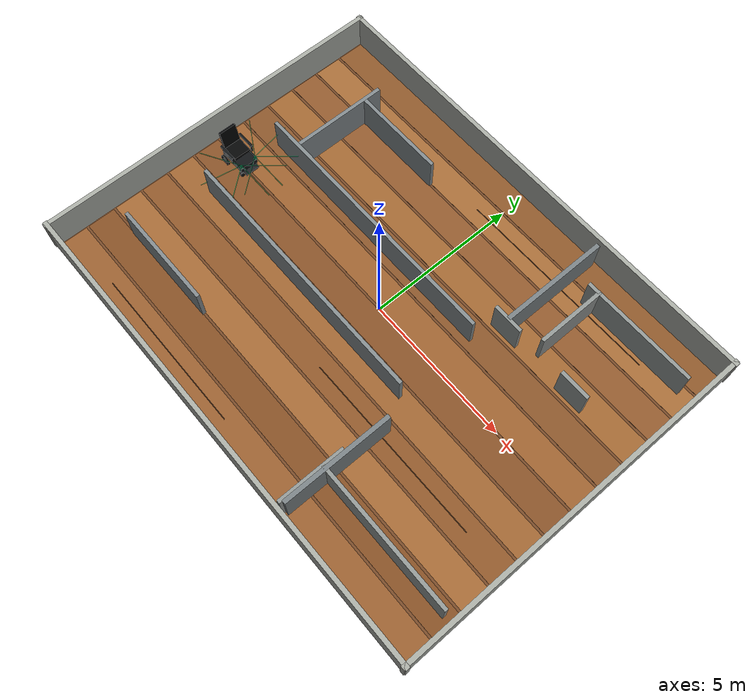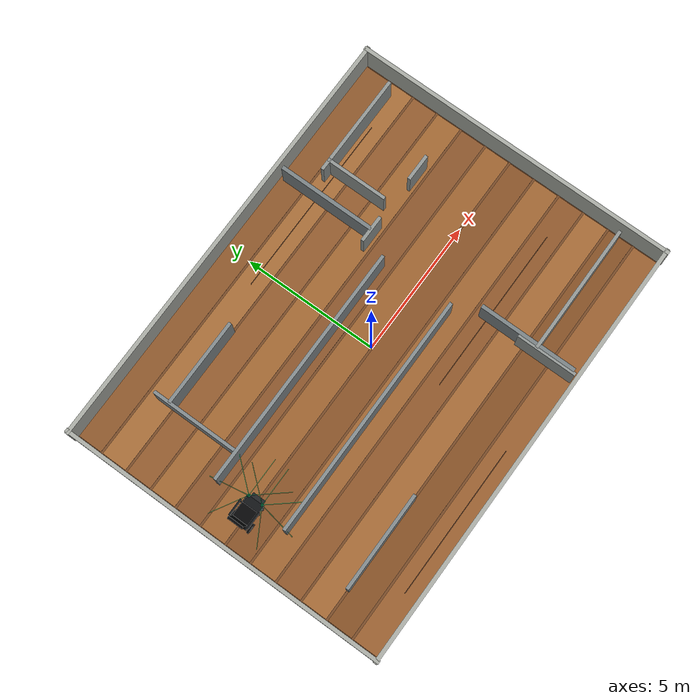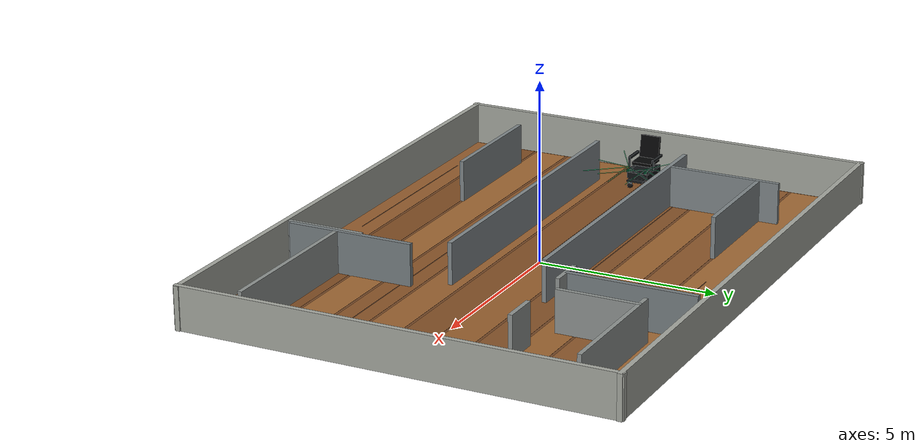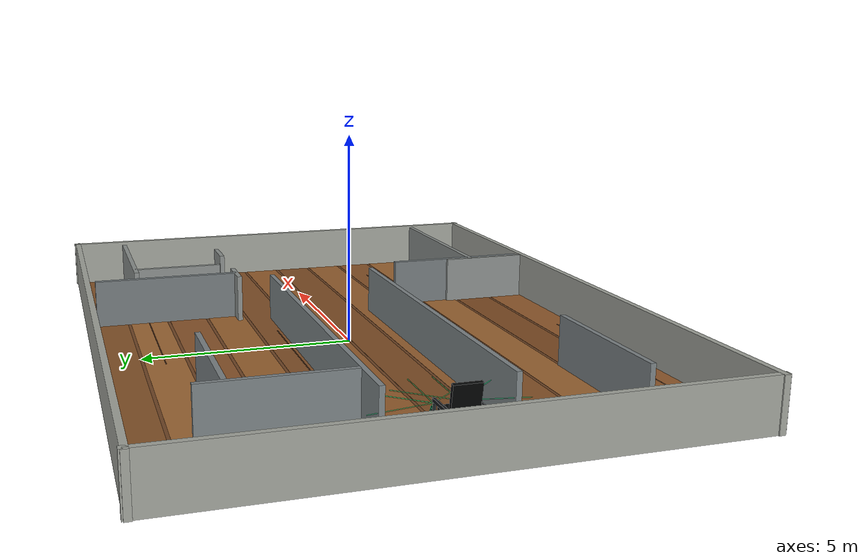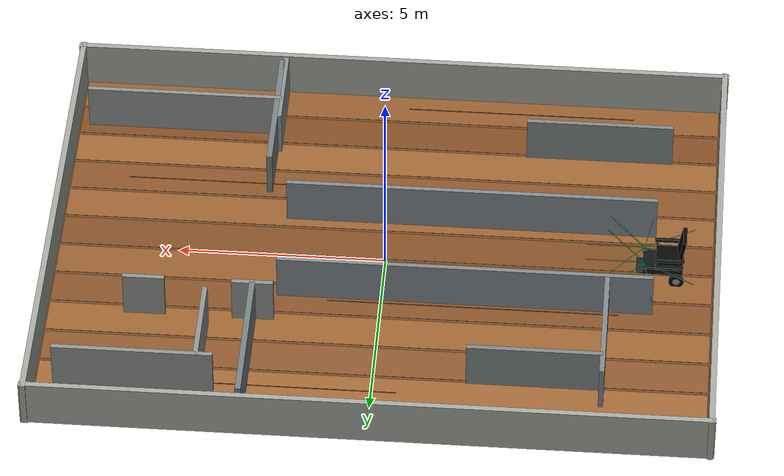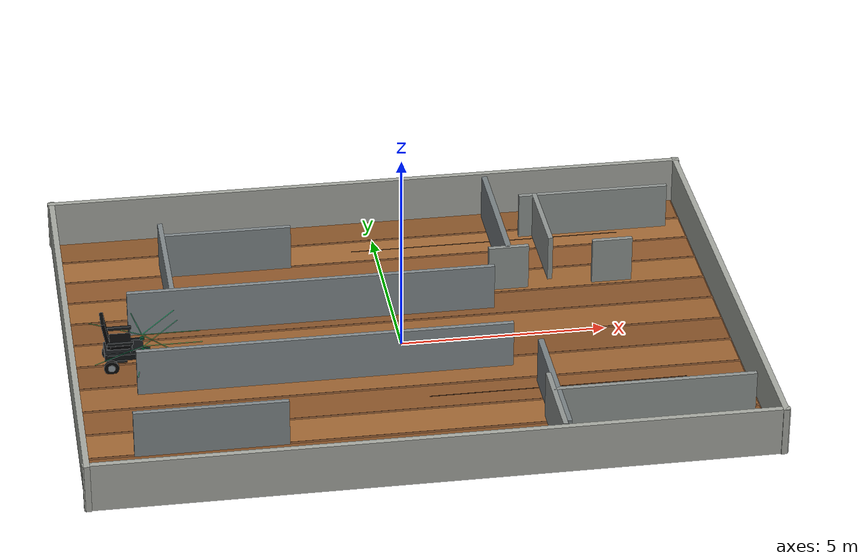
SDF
<?xml version="1.0"?>
<sdf version="1.10">
  <world name="m6_room">
    <physics name="1ms" type="ignored">
      <max_step_size>0.001</max_step_size>
      <real_time_factor>1.0</real_time_factor>
    </physics>

    <plugin filename="gz-sim-physics-system" name="gz::sim::systems::Physics"/>
    <plugin filename="gz-sim-user-commands-system" name="gz::sim::systems::UserCommands"/>
    <plugin filename="gz-sim-scene-broadcaster-system" name="gz::sim::systems::SceneBroadcaster"/>
    <plugin filename="gz-sim-sensors-system" name="gz::sim::systems::Sensors">
      <render_engine>ogre2</render_engine>
    </plugin>

    <light name="sun" type="directional">
      <pose>0 0 8 0 0 0</pose>
      <diffuse>0.90 0.86 0.78 1</diffuse>
      <specular>0.20 0.18 0.15 1</specular>
      <direction>-0.45 0.20 -0.88</direction>
    </light>

    <model name="floor">
      <static>true</static>
      <link name="link">
        <collision name="collision">
          <geometry><box><size>16 12 0.05</size></box></geometry>
        </collision>
        <visual name="visual">
          <geometry><box><size>16 12 0.05</size></box></geometry>
          <material>
            <ambient>0.45 0.28 0.15 1</ambient>
            <diffuse>0.45 0.28 0.15 1</diffuse>
            <specular>0.10 0.08 0.05 1</specular>
          </material>
        </visual>
      </link>
    </model>

    <model name="wood_floor_plank_0"><static>true</static><pose>0 -5.5 0.031 0 0 0</pose><link name="link"><visual name="visual"><geometry><box><size>15.8 0.92 0.004</size></box></geometry><material><ambient>0.58 0.36 0.18 1</ambient><diffuse>0.58 0.36 0.18 1</diffuse></material></visual></link></model>
    <model name="wood_floor_plank_1"><static>true</static><pose>0 -4.5 0.031 0 0 0</pose><link name="link"><visual name="visual"><geometry><box><size>15.8 0.92 0.004</size></box></geometry><material><ambient>0.50 0.30 0.14 1</ambient><diffuse>0.50 0.30 0.14 1</diffuse></material></visual></link></model>
    <model name="wood_floor_plank_2"><static>true</static><pose>0 -3.5 0.031 0 0 0</pose><link name="link"><visual name="visual"><geometry><box><size>15.8 0.92 0.004</size></box></geometry><material><ambient>0.62 0.40 0.20 1</ambient><diffuse>0.62 0.40 0.20 1</diffuse></material></visual></link></model>
    <model name="wood_floor_plank_3"><static>true</static><pose>0 -2.5 0.031 0 0 0</pose><link name="link"><visual name="visual"><geometry><box><size>15.8 0.92 0.004</size></box></geometry><material><ambient>0.54 0.33 0.16 1</ambient><diffuse>0.54 0.33 0.16 1</diffuse></material></visual></link></model>
    <model name="wood_floor_plank_4"><static>true</static><pose>0 -1.5 0.031 0 0 0</pose><link name="link"><visual name="visual"><geometry><box><size>15.8 0.92 0.004</size></box></geometry><material><ambient>0.60 0.38 0.19 1</ambient><diffuse>0.60 0.38 0.19 1</diffuse></material></visual></link></model>
    <model name="wood_floor_plank_5"><static>true</static><pose>0 -0.5 0.031 0 0 0</pose><link name="link"><visual name="visual"><geometry><box><size>15.8 0.92 0.004</size></box></geometry><material><ambient>0.51 0.31 0.15 1</ambient><diffuse>0.51 0.31 0.15 1</diffuse></material></visual></link></model>
    <model name="wood_floor_plank_6"><static>true</static><pose>0 0.5 0.031 0 0 0</pose><link name="link"><visual name="visual"><geometry><box><size>15.8 0.92 0.004</size></box></geometry><material><ambient>0.59 0.37 0.18 1</ambient><diffuse>0.59 0.37 0.18 1</diffuse></material></visual></link></model>
    <model name="wood_floor_plank_7"><static>true</static><pose>0 1.5 0.031 0 0 0</pose><link name="link"><visual name="visual"><geometry><box><size>15.8 0.92 0.004</size></box></geometry><material><ambient>0.52 0.32 0.16 1</ambient><diffuse>0.52 0.32 0.16 1</diffuse></material></visual></link></model>
    <model name="wood_floor_plank_8"><static>true</static><pose>0 2.5 0.031 0 0 0</pose><link name="link"><visual name="visual"><geometry><box><size>15.8 0.92 0.004</size></box></geometry><material><ambient>0.61 0.39 0.19 1</ambient><diffuse>0.61 0.39 0.19 1</diffuse></material></visual></link></model>
    <model name="wood_floor_plank_9"><static>true</static><pose>0 3.5 0.031 0 0 0</pose><link name="link"><visual name="visual"><geometry><box><size>15.8 0.92 0.004</size></box></geometry><material><ambient>0.55 0.34 0.17 1</ambient><diffuse>0.55 0.34 0.17 1</diffuse></material></visual></link></model>
    <model name="wood_floor_plank_10"><static>true</static><pose>0 4.5 0.031 0 0 0</pose><link name="link"><visual name="visual"><geometry><box><size>15.8 0.92 0.004</size></box></geometry><material><ambient>0.63 0.41 0.21 1</ambient><diffuse>0.63 0.41 0.21 1</diffuse></material></visual></link></model>
    <model name="wood_floor_plank_11"><static>true</static><pose>0 5.5 0.031 0 0 0</pose><link name="link"><visual name="visual"><geometry><box><size>15.8 0.92 0.004</size></box></geometry><material><ambient>0.53 0.33 0.16 1</ambient><diffuse>0.53 0.33 0.16 1</diffuse></material></visual></link></model>
    <model name="wood_floor_grain_0"><static>true</static><pose>-3.0 -5.5 0.034 0 0 0</pose><link name="link"><visual name="visual"><geometry><box><size>5.6 0.025 0.005</size></box></geometry><material><ambient>0.28 0.16 0.08 1</ambient><diffuse>0.28 0.16 0.08 1</diffuse></material></visual></link></model>
    <model name="wood_floor_grain_1"><static>true</static><pose>3.4 -2.5 0.034 0 0 0</pose><link name="link"><visual name="visual"><geometry><box><size>6.2 0.025 0.005</size></box></geometry><material><ambient>0.30 0.17 0.08 1</ambient><diffuse>0.30 0.17 0.08 1</diffuse></material></visual></link></model>
    <model name="wood_floor_grain_2"><static>true</static><pose>-2.2 1.5 0.034 0 0 0</pose><link name="link"><visual name="visual"><geometry><box><size>7.0 0.025 0.005</size></box></geometry><material><ambient>0.29 0.17 0.08 1</ambient><diffuse>0.29 0.17 0.08 1</diffuse></material></visual></link></model>
    <model name="wood_floor_grain_3"><static>true</static><pose>2.8 4.5 0.034 0 0 0</pose><link name="link"><visual name="visual"><geometry><box><size>6.8 0.025 0.005</size></box></geometry><material><ambient>0.27 0.15 0.07 1</ambient><diffuse>0.27 0.15 0.07 1</diffuse></material></visual></link></model>

    <model name="outer_north_wall"><static>true</static><pose>0 6 0.60 0 0 0</pose><link name="link"><collision name="collision"><geometry><box><size>16.2 0.14 1.2</size></box></geometry></collision><visual name="visual"><geometry><box><size>16.2 0.14 1.2</size></box></geometry><material><ambient>0.64 0.65 0.62 1</ambient><diffuse>0.64 0.65 0.62 1</diffuse></material></visual></link></model>
    <model name="outer_south_wall"><static>true</static><pose>0 -6 0.60 0 0 0</pose><link name="link"><collision name="collision"><geometry><box><size>16.2 0.14 1.2</size></box></geometry></collision><visual name="visual"><geometry><box><size>16.2 0.14 1.2</size></box></geometry><material><ambient>0.64 0.65 0.62 1</ambient><diffuse>0.64 0.65 0.62 1</diffuse></material></visual></link></model>
    <model name="outer_west_wall"><static>true</static><pose>-8 0 0.60 0 0 0</pose><link name="link"><collision name="collision"><geometry><box><size>0.14 12.2 1.2</size></box></geometry></collision><visual name="visual"><geometry><box><size>0.14 12.2 1.2</size></box></geometry><material><ambient>0.64 0.65 0.62 1</ambient><diffuse>0.64 0.65 0.62 1</diffuse></material></visual></link></model>
    <model name="outer_east_wall"><static>true</static><pose>8 0 0.60 0 0 0</pose><link name="link"><collision name="collision"><geometry><box><size>0.14 12.2 1.2</size></box></geometry></collision><visual name="visual"><geometry><box><size>0.14 12.2 1.2</size></box></geometry><material><ambient>0.64 0.65 0.62 1</ambient><diffuse>0.64 0.65 0.62 1</diffuse></material></visual></link></model>

    <model name="long_corridor_north_wall"><static>true</static><pose>-2.0 1.35 0.60 0 0 0</pose><link name="link"><collision name="collision"><geometry><box><size>9.0 0.12 1.2</size></box></geometry></collision><visual name="visual"><geometry><box><size>9.0 0.12 1.2</size></box></geometry><material><ambient>0.50 0.53 0.54 1</ambient><diffuse>0.50 0.53 0.54 1</diffuse></material></visual></link></model>
    <model name="long_corridor_south_wall"><static>true</static><pose>-2.0 -1.35 0.60 0 0 0</pose><link name="link"><collision name="collision"><geometry><box><size>9.0 0.12 1.2</size></box></geometry></collision><visual name="visual"><geometry><box><size>9.0 0.12 1.2</size></box></geometry><material><ambient>0.50 0.53 0.54 1</ambient><diffuse>0.50 0.53 0.54 1</diffuse></material></visual></link></model>

    <model name="narrow_door_left_jamb"><static>true</static><pose>3.0 4.0 0.60 0 0 0</pose><link name="link"><collision name="collision"><geometry><box><size>0.14 3.6 1.2</size></box></geometry></collision><visual name="visual"><geometry><box><size>0.14 3.6 1.2</size></box></geometry><material><ambient>0.46 0.49 0.50 1</ambient><diffuse>0.46 0.49 0.50 1</diffuse></material></visual></link></model>
    <model name="narrow_door_right_jamb"><static>true</static><pose>3.0 -4.0 0.60 0 0 0</pose><link name="link"><collision name="collision"><geometry><box><size>0.14 3.6 1.2</size></box></geometry></collision><visual name="visual"><geometry><box><size>0.14 3.6 1.2</size></box></geometry><material><ambient>0.46 0.49 0.50 1</ambient><diffuse>0.46 0.49 0.50 1</diffuse></material></visual></link></model>

    <model name="small_room_back_wall"><static>true</static><pose>5.6 4.7 0.60 0 0 0</pose><link name="link"><collision name="collision"><geometry><box><size>3.8 0.12 1.2</size></box></geometry></collision><visual name="visual"><geometry><box><size>3.8 0.12 1.2</size></box></geometry><material><ambient>0.55 0.57 0.56 1</ambient><diffuse>0.55 0.57 0.56 1</diffuse></material></visual></link></model>
    <model name="small_room_side_wall"><static>true</static><pose>4.1 3.6 0.60 0 0 0</pose><link name="link"><collision name="collision"><geometry><box><size>0.12 2.3 1.2</size></box></geometry></collision><visual name="visual"><geometry><box><size>0.12 2.3 1.2</size></box></geometry><material><ambient>0.55 0.57 0.56 1</ambient><diffuse>0.55 0.57 0.56 1</diffuse></material></visual></link></model>
    <model name="small_room_entry_right_wall"><static>true</static><pose>3.0 2.2 0.60 0 0 0</pose><link name="link"><collision name="collision"><geometry><box><size>1.0 0.12 1.2</size></box></geometry></collision><visual name="visual"><geometry><box><size>1.0 0.12 1.2</size></box></geometry><material><ambient>0.55 0.57 0.56 1</ambient><diffuse>0.55 0.57 0.56 1</diffuse></material></visual></link></model>
    <model name="small_room_entry_left_wall"><static>true</static><pose>5.6 2.2 0.60 0 0 0</pose><link name="link"><collision name="collision"><geometry><box><size>1.0 0.12 1.2</size></box></geometry></collision><visual name="visual"><geometry><box><size>1.0 0.12 1.2</size></box></geometry><material><ambient>0.55 0.57 0.56 1</ambient><diffuse>0.55 0.57 0.56 1</diffuse></material></visual></link></model>

    <model name="large_room_back_wall"><static>true</static><pose>5.3 -4.4 0.60 0 0 0</pose><link name="link"><collision name="collision"><geometry><box><size>4.8 0.12 1.2</size></box></geometry></collision><visual name="visual"><geometry><box><size>4.8 0.12 1.2</size></box></geometry><material><ambient>0.55 0.57 0.56 1</ambient><diffuse>0.55 0.57 0.56 1</diffuse></material></visual></link></model>
    <model name="large_room_side_wall"><static>true</static><pose>2.9 -4.8 0.60 0 0 0</pose><link name="link"><collision name="collision"><geometry><box><size>0.12 2.2 1.2</size></box></geometry></collision><visual name="visual"><geometry><box><size>0.12 2.2 1.2</size></box></geometry><material><ambient>0.55 0.57 0.56 1</ambient><diffuse>0.55 0.57 0.56 1</diffuse></material></visual></link></model>

    <model name="maze_turn_wall_a"><static>true</static><pose>-5.4 3.0 0.60 0 0 0</pose><link name="link"><collision name="collision"><geometry><box><size>0.12 3.2 1.2</size></box></geometry></collision><visual name="visual"><geometry><box><size>0.12 3.2 1.2</size></box></geometry><material><ambient>0.49 0.52 0.53 1</ambient><diffuse>0.49 0.52 0.53 1</diffuse></material></visual></link></model>
    <model name="maze_turn_wall_b"><static>true</static><pose>-3.8 4.0 0.60 0 0 0</pose><link name="link"><collision name="collision"><geometry><box><size>3.2 0.12 1.2</size></box></geometry></collision><visual name="visual"><geometry><box><size>3.2 0.12 1.2</size></box></geometry><material><ambient>0.49 0.52 0.53 1</ambient><diffuse>0.49 0.52 0.53 1</diffuse></material></visual></link></model>
    <model name="maze_turn_wall_c"><static>true</static><pose>-5.0 -4.0 0.60 0 0 0</pose><link name="link"><collision name="collision"><geometry><box><size>3.6 0.12 1.2</size></box></geometry></collision><visual name="visual"><geometry><box><size>3.6 0.12 1.2</size></box></geometry><material><ambient>0.49 0.52 0.53 1</ambient><diffuse>0.49 0.52 0.53 1</diffuse></material></visual></link></model>

    <include>
      <uri>model://smart_wheelchair</uri>
      <pose>-6.7 0 0 0 0 0</pose>
    </include>
  </world>
</sdf>

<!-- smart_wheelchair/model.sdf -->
<sdf version="1.10">
  <model name="smart_wheelchair">
    <pose>0 0 0 0 0 0</pose>

    <link name="base_link">
      <inertial>
        <mass>65.0</mass>
        <inertia>
          <ixx>3.0</ixx><ixy>0</ixy><ixz>0</ixz>
          <iyy>4.0</iyy><iyz>0</iyz>
          <izz>3.0</izz>
        </inertia>
      </inertial>

      <collision name="base_collision">
        <pose>0 0 0.42 0 0 0</pose>
        <geometry><box><size>0.95 0.62 0.18</size></box></geometry>
      </collision>
      <visual name="base_visual">
        <pose>0 0 0.42 0 0 0</pose>
        <geometry><box><size>0.95 0.62 0.18</size></box></geometry>
        <material><ambient>0.06 0.07 0.08 1</ambient><diffuse>0.06 0.07 0.08 1</diffuse></material>
      </visual>

      <visual name="seat_visual">
        <pose>-0.12 0 0.68 0 0 0</pose>
        <geometry><box><size>0.60 0.58 0.09</size></box></geometry>
        <material><ambient>0.015 0.017 0.02 1</ambient><diffuse>0.015 0.017 0.02 1</diffuse></material>
      </visual>

      <visual name="backrest_visual">
        <pose>-0.43 0 1.00 0 -0.18 0</pose>
        <geometry><box><size>0.09 0.58 0.70</size></box></geometry>
        <material><ambient>0.015 0.017 0.02 1</ambient><diffuse>0.015 0.017 0.02 1</diffuse></material>
      </visual>

      <visual name="left_armrest_visual">
        <pose>-0.10 0.36 0.83 0 0 0</pose>
        <geometry><box><size>0.62 0.06 0.08</size></box></geometry>
        <material><ambient>0.08 0.09 0.10 1</ambient><diffuse>0.08 0.09 0.10 1</diffuse></material>
      </visual>

      <visual name="right_armrest_visual">
        <pose>-0.10 -0.36 0.83 0 0 0</pose>
        <geometry><box><size>0.62 0.06 0.08</size></box></geometry>
        <material><ambient>0.08 0.09 0.10 1</ambient><diffuse>0.08 0.09 0.10 1</diffuse></material>
      </visual>

      <visual name="left_arm_support_front_visual">
        <pose>0.16 0.36 0.67 0 0 0</pose>
        <geometry><box><size>0.045 0.045 0.28</size></box></geometry>
        <material><ambient>0.16 0.18 0.19 1</ambient><diffuse>0.16 0.18 0.19 1</diffuse></material>
      </visual>

      <visual name="right_arm_support_front_visual">
        <pose>0.16 -0.36 0.67 0 0 0</pose>
        <geometry><box><size>0.045 0.045 0.28</size></box></geometry>
        <material><ambient>0.16 0.18 0.19 1</ambient><diffuse>0.16 0.18 0.19 1</diffuse></material>
      </visual>

      <visual name="footplate_visual">
        <pose>0.48 0 0.30 0 0 0</pose>
        <geometry><box><size>0.32 0.48 0.045</size></box></geometry>
        <material><ambient>0.12 0.13 0.14 1</ambient><diffuse>0.12 0.13 0.14 1</diffuse></material>
      </visual>

      <visual name="left_frame_rail_visual">
        <pose>0.02 0.31 0.52 0 0 0</pose>
        <geometry><box><size>0.86 0.035 0.06</size></box></geometry>
        <material><ambient>0.13 0.15 0.16 1</ambient><diffuse>0.13 0.15 0.16 1</diffuse></material>
      </visual>

      <visual name="right_frame_rail_visual">
        <pose>0.02 -0.31 0.52 0 0 0</pose>
        <geometry><box><size>0.86 0.035 0.06</size></box></geometry>
        <material><ambient>0.13 0.15 0.16 1</ambient><diffuse>0.13 0.15 0.16 1</diffuse></material>
      </visual>

      <visual name="battery_visual">
        <pose>-0.15 0 0.27 0 0 0</pose>
        <geometry><box><size>0.42 0.44 0.12</size></box></geometry>
        <material><ambient>0.08 0.09 0.10 1</ambient><diffuse>0.08 0.09 0.10 1</diffuse></material>
      </visual>

      <visual name="left_lidar_body_visual">
        <pose>0.46 0.26 0.56 0 0 0</pose>
        <geometry><box><size>0.10 0.08 0.055</size></box></geometry>
        <material><ambient>0.02 0.30 0.18 1</ambient><diffuse>0.02 0.30 0.18 1</diffuse></material>
      </visual>

      <visual name="right_lidar_body_visual">
        <pose>0.46 -0.26 0.56 0 0 0</pose>
        <geometry><box><size>0.10 0.08 0.055</size></box></geometry>
        <material><ambient>0.02 0.30 0.18 1</ambient><diffuse>0.02 0.30 0.18 1</diffuse></material>
      </visual>

      <visual name="left_lidar_ray_minus50_visual">
        <pose>0.910 -0.276 0.660 0 0 -0.8727</pose>
        <geometry><box><size>1.40 0.018 0.012</size></box></geometry>
        <material><ambient>0.0 0.9 0.48 0.38</ambient><diffuse>0.0 0.9 0.48 0.38</diffuse></material>
      </visual>

      <visual name="left_lidar_ray_0_visual">
        <pose>1.160 0.260 0.660 0 0 0.0000</pose>
        <geometry><box><size>1.40 0.018 0.012</size></box></geometry>
        <material><ambient>0.0 0.9 0.48 0.38</ambient><diffuse>0.0 0.9 0.48 0.38</diffuse></material>
      </visual>

      <visual name="left_lidar_ray_50_visual">
        <pose>0.910 0.796 0.660 0 0 0.8727</pose>
        <geometry><box><size>1.40 0.018 0.012</size></box></geometry>
        <material><ambient>0.0 1.0 0.55 0.50</ambient><diffuse>0.0 1.0 0.55 0.50</diffuse></material>
      </visual>

      <visual name="left_lidar_ray_100_visual">
        <pose>0.338 0.949 0.660 0 0 1.7453</pose>
        <geometry><box><size>1.40 0.018 0.012</size></box></geometry>
        <material><ambient>0.0 0.9 0.48 0.38</ambient><diffuse>0.0 0.9 0.48 0.38</diffuse></material>
      </visual>

      <visual name="left_lidar_ray_150_visual">
        <pose>-0.146 0.610 0.660 0 0 2.6180</pose>
        <geometry><box><size>1.40 0.018 0.012</size></box></geometry>
        <material><ambient>0.0 0.9 0.48 0.38</ambient><diffuse>0.0 0.9 0.48 0.38</diffuse></material>
      </visual>

      <visual name="right_lidar_ray_minus150_visual">
        <pose>-0.146 -0.610 0.660 0 0 -2.6180</pose>
        <geometry><box><size>1.40 0.018 0.012</size></box></geometry>
        <material><ambient>0.0 0.9 0.48 0.38</ambient><diffuse>0.0 0.9 0.48 0.38</diffuse></material>
      </visual>

      <visual name="right_lidar_ray_minus100_visual">
        <pose>0.338 -0.949 0.660 0 0 -1.7453</pose>
        <geometry><box><size>1.40 0.018 0.012</size></box></geometry>
        <material><ambient>0.0 0.9 0.48 0.38</ambient><diffuse>0.0 0.9 0.48 0.38</diffuse></material>
      </visual>

      <visual name="right_lidar_ray_minus50_visual">
        <pose>0.910 -0.796 0.660 0 0 -0.8727</pose>
        <geometry><box><size>1.40 0.018 0.012</size></box></geometry>
        <material><ambient>0.0 1.0 0.55 0.50</ambient><diffuse>0.0 1.0 0.55 0.50</diffuse></material>
      </visual>

      <visual name="right_lidar_ray_0_visual">
        <pose>1.160 -0.260 0.660 0 0 0.0000</pose>
        <geometry><box><size>1.40 0.018 0.012</size></box></geometry>
        <material><ambient>0.0 0.9 0.48 0.38</ambient><diffuse>0.0 0.9 0.48 0.38</diffuse></material>
      </visual>

      <visual name="right_lidar_ray_50_visual">
        <pose>0.910 0.276 0.660 0 0 0.8727</pose>
        <geometry><box><size>1.40 0.018 0.012</size></box></geometry>
        <material><ambient>0.0 0.9 0.48 0.38</ambient><diffuse>0.0 0.9 0.48 0.38</diffuse></material>
      </visual>

      <sensor name="left_lidar" type="gpu_lidar">
        <pose>0.46 0.26 0.56 0 0 0</pose>
        <topic>/scan_left</topic>
        <update_rate>10</update_rate>
        <lidar>
          <scan>
            <horizontal>
              <samples>401</samples>
              <resolution>1</resolution>
              <min_angle>-0.87266</min_angle>
              <max_angle>2.61799</max_angle>
            </horizontal>
          </scan>
          <range>
            <min>0.08</min>
            <max>5.0</max>
            <resolution>0.01</resolution>
          </range>
        </lidar>
        <always_on>true</always_on>
        <visualize>true</visualize>
      </sensor>

      <sensor name="right_lidar" type="gpu_lidar">
        <pose>0.46 -0.26 0.56 0 0 0</pose>
        <topic>/scan_right</topic>
        <update_rate>10</update_rate>
        <lidar>
          <scan>
            <horizontal>
              <samples>401</samples>
              <resolution>1</resolution>
              <min_angle>-2.61799</min_angle>
              <max_angle>0.87266</max_angle>
            </horizontal>
          </scan>
          <range>
            <min>0.08</min>
            <max>5.0</max>
            <resolution>0.01</resolution>
          </range>
        </lidar>
        <always_on>true</always_on>
        <visualize>true</visualize>
      </sensor>

      <sensor name="rear_camera" type="camera">
        <pose>-0.58 0 0.72 0 0.60 3.1416</pose>
        <topic>/camera/rear/image</topic>
        <update_rate>15</update_rate>
        <camera>
          <camera_info_topic>/camera/rear/camera_info</camera_info_topic>
          <horizontal_fov>2.094</horizontal_fov>
          <image>
            <width>640</width>
            <height>360</height>
            <format>R8G8B8</format>
          </image>
          <clip>
            <near>0.05</near>
            <far>10.0</far>
          </clip>
        </camera>
        <always_on>true</always_on>
      </sensor>
    </link>

    <link name="left_rear_wheel">
      <pose>-0.33 0.36 0.18 0 0 0</pose>
      <inertial><mass>2.0</mass><inertia><ixx>0.02</ixx><iyy>0.02</iyy><izz>0.02</izz></inertia></inertial>
      <collision name="collision"><pose>0 0 0 1.5708 0 0</pose><geometry><cylinder><radius>0.18</radius><length>0.07</length></cylinder></geometry></collision>
      <visual name="visual"><pose>0 0 0 1.5708 0 0</pose><geometry><cylinder><radius>0.18</radius><length>0.07</length></cylinder></geometry><material><ambient>0.03 0.03 0.03 1</ambient><diffuse>0.03 0.03 0.03 1</diffuse></material></visual>
      <visual name="left_rear_hub_visual"><pose>0 0 0 1.5708 0 0</pose><geometry><cylinder><radius>0.09</radius><length>0.08</length></cylinder></geometry><material><ambient>0.55 0.58 0.60 1</ambient><diffuse>0.55 0.58 0.60 1</diffuse></material></visual>
    </link>

    <link name="right_rear_wheel">
      <pose>-0.33 -0.36 0.18 0 0 0</pose>
      <inertial><mass>2.0</mass><inertia><ixx>0.02</ixx><iyy>0.02</iyy><izz>0.02</izz></inertia></inertial>
      <collision name="collision"><pose>0 0 0 1.5708 0 0</pose><geometry><cylinder><radius>0.18</radius><length>0.07</length></cylinder></geometry></collision>
      <visual name="visual"><pose>0 0 0 1.5708 0 0</pose><geometry><cylinder><radius>0.18</radius><length>0.07</length></cylinder></geometry><material><ambient>0.03 0.03 0.03 1</ambient><diffuse>0.03 0.03 0.03 1</diffuse></material></visual>
      <visual name="right_rear_hub_visual"><pose>0 0 0 1.5708 0 0</pose><geometry><cylinder><radius>0.09</radius><length>0.08</length></cylinder></geometry><material><ambient>0.55 0.58 0.60 1</ambient><diffuse>0.55 0.58 0.60 1</diffuse></material></visual>
    </link>

    <link name="left_front_caster">
      <pose>0.38 0.25 0.08 0 0 0</pose>
      <inertial><mass>0.6</mass><inertia><ixx>0.002</ixx><iyy>0.002</iyy><izz>0.002</izz></inertia></inertial>
      <collision name="collision"><geometry><sphere><radius>0.08</radius></sphere></geometry></collision>
      <visual name="visual"><geometry><sphere><radius>0.08</radius></sphere></geometry><material><ambient>0.05 0.05 0.055 1</ambient><diffuse>0.05 0.05 0.055 1</diffuse></material></visual>
      <visual name="left_caster_fork_visual"><pose>0 0 0.11 0 0 0</pose><geometry><box><size>0.05 0.12 0.12</size></box></geometry><material><ambient>0.55 0.58 0.60 1</ambient><diffuse>0.55 0.58 0.60 1</diffuse></material></visual>
    </link>

    <link name="right_front_caster">
      <pose>0.38 -0.25 0.08 0 0 0</pose>
      <inertial><mass>0.6</mass><inertia><ixx>0.002</ixx><iyy>0.002</iyy><izz>0.002</izz></inertia></inertial>
      <collision name="collision"><geometry><sphere><radius>0.08</radius></sphere></geometry></collision>
      <visual name="visual"><geometry><sphere><radius>0.08</radius></sphere></geometry><material><ambient>0.05 0.05 0.055 1</ambient><diffuse>0.05 0.05 0.055 1</diffuse></material></visual>
      <visual name="right_caster_fork_visual"><pose>0 0 0.11 0 0 0</pose><geometry><box><size>0.05 0.12 0.12</size></box></geometry><material><ambient>0.55 0.58 0.60 1</ambient><diffuse>0.55 0.58 0.60 1</diffuse></material></visual>
    </link>

    <joint name="left_rear_wheel_joint" type="revolute">
      <parent>base_link</parent>
      <child>left_rear_wheel</child>
      <axis>
        <xyz>0 1 0</xyz>
        <limit><lower>-1e16</lower><upper>1e16</upper></limit>
      </axis>
    </joint>

    <joint name="right_rear_wheel_joint" type="revolute">
      <parent>base_link</parent>
      <child>right_rear_wheel</child>
      <axis>
        <xyz>0 1 0</xyz>
        <limit><lower>-1e16</lower><upper>1e16</upper></limit>
      </axis>
    </joint>

    <joint name="left_front_caster_joint" type="ball">
      <parent>base_link</parent>
      <child>left_front_caster</child>
    </joint>

    <joint name="right_front_caster_joint" type="ball">
      <parent>base_link</parent>
      <child>right_front_caster</child>
    </joint>

    <plugin filename="gz-sim-diff-drive-system" name="gz::sim::systems::DiffDrive">
      <left_joint>left_rear_wheel_joint</left_joint>
      <right_joint>right_rear_wheel_joint</right_joint>
      <wheel_separation>0.72</wheel_separation>
      <wheel_radius>0.18</wheel_radius>
      <topic>/cmd_vel</topic>
      <odom_topic>/odom</odom_topic>
      <frame_id>odom</frame_id>
      <child_frame_id>base_link</child_frame_id>
      <max_linear_acceleration>0.6</max_linear_acceleration>
      <max_angular_acceleration>1.2</max_angular_acceleration>
    </plugin>
  </model>
</sdf>
